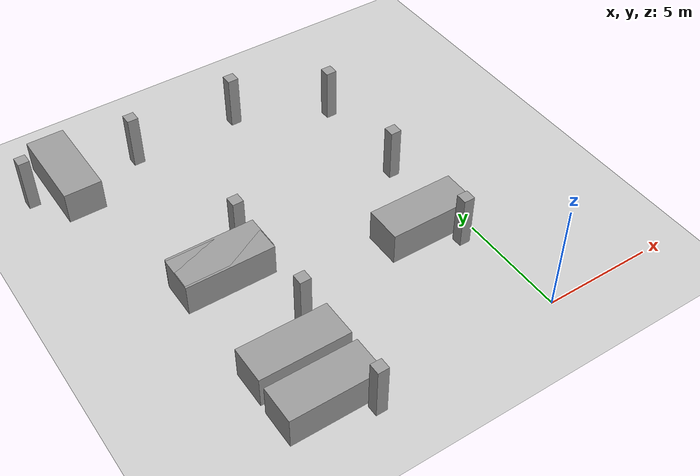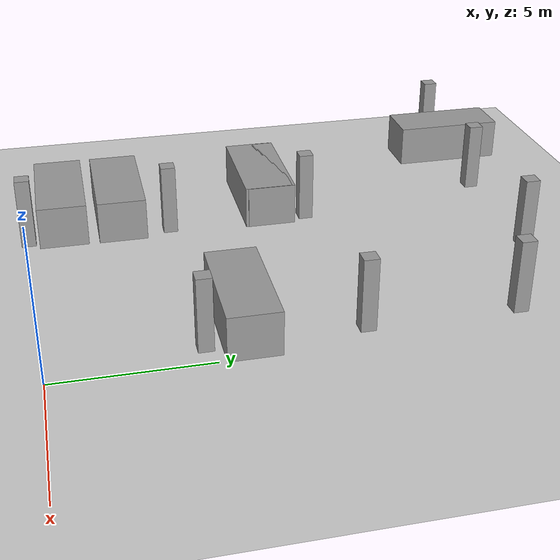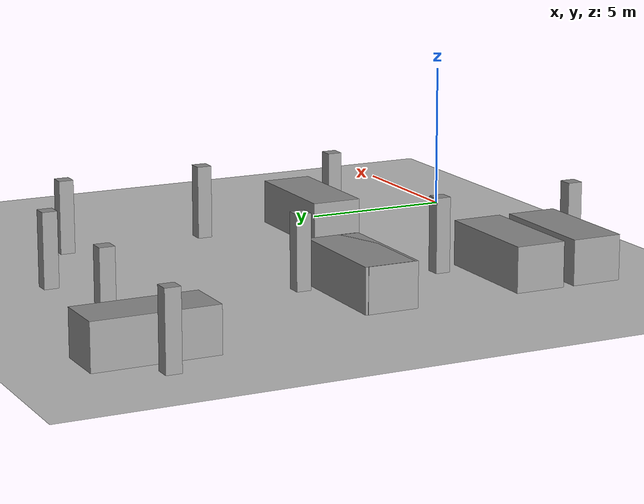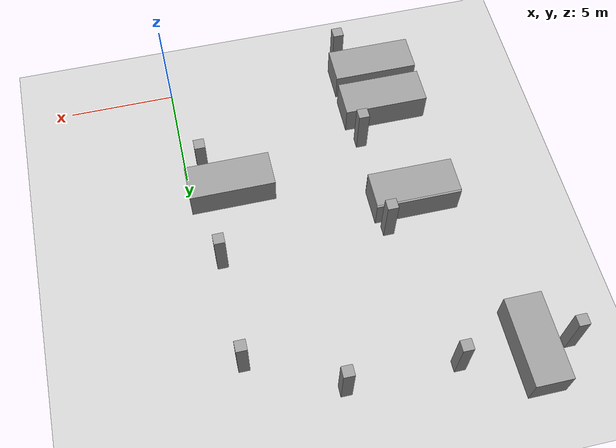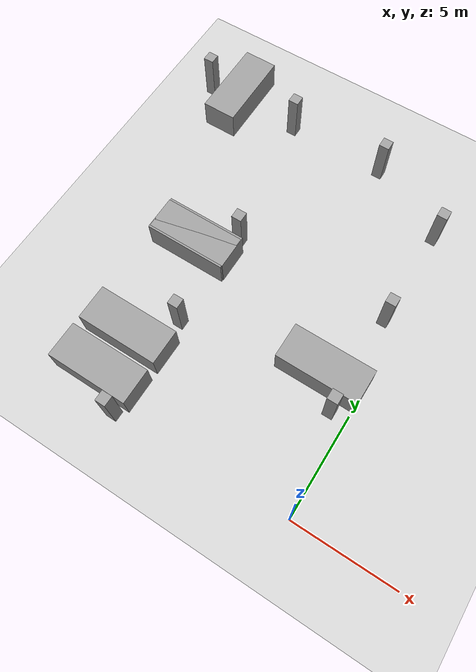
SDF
<sdf version="1.6">
 <world name="default">
  <model name="ground_plane">
   <static>1</static>
   <link name="link">
    <collision name="collision">
     <geometry><plane><normal>0 0 1</normal><size>100 100</size></plane></geometry>
     <surface>
      <contact><collide_bitmask>65535</collide_bitmask></contact>
      <friction><ode><mu>100</mu><mu2>50</mu2></ode></friction>
     </surface>
    </collision>
    <visual name="visual">
     <cast_shadows>0</cast_shadows>
     <geometry><plane><normal>0 0 1</normal><size>100 100</size></plane></geometry>
     <material>
      <script><uri>file://media/materials/scripts/gazebo.material</uri><name>Gazebo/Grey</name></script>
     </material>
    </visual>
   </link>
  </model>
  <model name="carpark_columns">
   <link name="link_0_clone">
    <inertial>
     <mass>10000</mass>
     <inertia><ixx>1666.67</ixx><ixy>0</ixy><ixz>0</ixz><iyy>1666.67</iyy><iyz>0</iyz><izz>1666.67</izz></inertia>
    </inertial>
    <pose>6.61634 -6.04328 0.3 0 -0 0</pose>
    <visual name="visual">
     <geometry><box><size>0.5 0.5 2.5</size></box></geometry>
     <material>
      <lighting>1</lighting>
      <script><uri>file://media/materials/scripts/gazebo.material</uri><name>Gazebo/Grey</name></script>
      <shader type="vertex"><normal_map>__default__</normal_map></shader>
      <ambient>0.3 0.3 0.3 1</ambient>
      <diffuse>0.7 0.7 0.7 1</diffuse>
      <specular>0.01 0.01 0.01 1</specular>
      <emissive>0 0 0 1</emissive>
     </material>
    </visual>
    <collision name="collision">
     <geometry><box><size>0.5 0.5 2.5</size></box></geometry>
     <surface>
      <friction>
       <ode><mu>1</mu><mu2>1</mu2><fdir1>0 0 0</fdir1><slip1>0</slip1><slip2>0</slip2></ode>
       <torsional>
        <coefficient>1</coefficient>
        <patch_radius>0</patch_radius>
        <surface_radius>0</surface_radius>
        <use_patch_radius>1</use_patch_radius>
        <ode><slip>0</slip></ode>
       </torsional>
      </friction>
      <bounce><restitution_coefficient>0</restitution_coefficient><threshold>1e+06</threshold></bounce>
      <contact>
       <collide_without_contact>0</collide_without_contact>
       <collide_without_contact_bitmask>1</collide_without_contact_bitmask>
       <collide_bitmask>0x01</collide_bitmask>
       <ode>
        <soft_cfm>0</soft_cfm>
        <soft_erp>0.2</soft_erp>
        <kp>1e+13</kp>
        <kd>1</kd>
        <max_vel>0.01</max_vel>
        <min_depth>0</min_depth>
       </ode>
       <bullet>
        <split_impulse>1</split_impulse>
        <split_impulse_penetration_threshold>-0.01</split_impulse_penetration_threshold>
        <soft_cfm>0</soft_cfm>
        <soft_erp>0.2</soft_erp>
        <kp>1e+13</kp>
        <kd>1</kd>
       </bullet>
      </contact>
     </surface>
    </collision>
   </link>
   <link name="link_0_clone_clone">
    <inertial>
     <mass>10000</mass>
     <inertia><ixx>1666.67</ixx><ixy>0</ixy><ixz>0</ixz><iyy>1666.67</iyy><iyz>0</iyz><izz>1666.67</izz></inertia>
    </inertial>
    <pose>6.61634 -1.04327 0.3 0 -0 0</pose>
    <visual name="visual">
     <geometry><box><size>0.5 0.5 2.5</size></box></geometry>
     <material>
      <lighting>1</lighting>
      <script><uri>file://media/materials/scripts/gazebo.material</uri><name>Gazebo/Grey</name></script>
      <shader type="vertex"><normal_map>__default__</normal_map></shader>
      <ambient>0.3 0.3 0.3 1</ambient>
      <diffuse>0.7 0.7 0.7 1</diffuse>
      <specular>0.01 0.01 0.01 1</specular>
      <emissive>0 0 0 1</emissive>
     </material>
    </visual>
    <collision name="collision">
     <geometry><box><size>0.5 0.5 2.5</size></box></geometry>
     <surface>
      <friction>
       <ode><mu>1</mu><mu2>1</mu2><fdir1>0 0 0</fdir1><slip1>0</slip1><slip2>0</slip2></ode>
       <torsional>
        <coefficient>1</coefficient>
        <patch_radius>0</patch_radius>
        <surface_radius>0</surface_radius>
        <use_patch_radius>1</use_patch_radius>
        <ode><slip>0</slip></ode>
       </torsional>
      </friction>
      <bounce><restitution_coefficient>0</restitution_coefficient><threshold>1e+06</threshold></bounce>
      <contact>
       <collide_without_contact>0</collide_without_contact>
       <collide_without_contact_bitmask>1</collide_without_contact_bitmask>
       <collide_bitmask>0x01</collide_bitmask>
       <ode>
        <soft_cfm>0</soft_cfm>
        <soft_erp>0.2</soft_erp>
        <kp>1e+13</kp>
        <kd>1</kd>
        <max_vel>0.01</max_vel>
        <min_depth>0</min_depth>
       </ode>
       <bullet>
        <split_impulse>1</split_impulse>
        <split_impulse_penetration_threshold>-0.01</split_impulse_penetration_threshold>
        <soft_cfm>0</soft_cfm>
        <soft_erp>0.2</soft_erp>
        <kp>1e+13</kp>
        <kd>1</kd>
       </bullet>
      </contact>
     </surface>
    </collision>
   </link>
   <link name="link_0_clone_clone_clone">
    <inertial>
     <mass>10000</mass>
     <inertia><ixx>1666.67</ixx><ixy>0</ixy><ixz>0</ixz><iyy>1666.67</iyy><iyz>0</iyz><izz>1666.67</izz></inertia>
    </inertial>
    <pose>6.61634 3.95673 0.3 0 -0 0</pose>
    <visual name="visual">
     <geometry><box><size>0.5 0.5 2.5</size></box></geometry>
     <material>
      <lighting>1</lighting>
      <script><uri>file://media/materials/scripts/gazebo.material</uri><name>Gazebo/Grey</name></script>
      <shader type="vertex"><normal_map>__default__</normal_map></shader>
      <ambient>0.3 0.3 0.3 1</ambient>
      <diffuse>0.7 0.7 0.7 1</diffuse>
      <specular>0.01 0.01 0.01 1</specular>
      <emissive>0 0 0 1</emissive>
     </material>
    </visual>
    <collision name="collision">
     <geometry><box><size>0.5 0.5 2.5</size></box></geometry>
     <surface>
      <friction>
       <ode><mu>1</mu><mu2>1</mu2><fdir1>0 0 0</fdir1><slip1>0</slip1><slip2>0</slip2></ode>
       <torsional>
        <coefficient>1</coefficient>
        <patch_radius>0</patch_radius>
        <surface_radius>0</surface_radius>
        <use_patch_radius>1</use_patch_radius>
        <ode><slip>0</slip></ode>
       </torsional>
      </friction>
      <bounce><restitution_coefficient>0</restitution_coefficient><threshold>1e+06</threshold></bounce>
      <contact>
       <collide_without_contact>0</collide_without_contact>
       <collide_without_contact_bitmask>1</collide_without_contact_bitmask>
       <collide_bitmask>0x01</collide_bitmask>
       <ode>
        <soft_cfm>0</soft_cfm>
        <soft_erp>0.2</soft_erp>
        <kp>1e+13</kp>
        <kd>1</kd>
        <max_vel>0.01</max_vel>
        <min_depth>0</min_depth>
       </ode>
       <bullet>
        <split_impulse>1</split_impulse>
        <split_impulse_penetration_threshold>-0.01</split_impulse_penetration_threshold>
        <soft_cfm>0</soft_cfm>
        <soft_erp>0.2</soft_erp>
        <kp>1e+13</kp>
        <kd>1</kd>
       </bullet>
      </contact>
     </surface>
    </collision>
   </link>
   <link name="link_0_clone_clone_clone_0">
    <inertial>
     <mass>10000</mass>
     <inertia><ixx>1666.67</ixx><ixy>0</ixy><ixz>0</ixz><iyy>1666.67</iyy><iyz>0</iyz><izz>1666.67</izz></inertia>
    </inertial>
    <pose>-1.18366 -11.0433 0.3 0 -0 0</pose>
    <visual name="visual">
     <geometry><box><size>0.5 0.5 2.5</size></box></geometry>
     <material>
      <lighting>1</lighting>
      <script><uri>file://media/materials/scripts/gazebo.material</uri><name>Gazebo/Grey</name></script>
      <shader type="vertex"><normal_map>__default__</normal_map></shader>
      <ambient>0.3 0.3 0.3 1</ambient>
      <diffuse>0.7 0.7 0.7 1</diffuse>
      <specular>0.01 0.01 0.01 1</specular>
      <emissive>0 0 0 1</emissive>
     </material>
    </visual>
    <collision name="collision">
     <geometry><box><size>0.5 0.5 2.5</size></box></geometry>
     <surface>
      <friction>
       <ode><mu>1</mu><mu2>1</mu2><fdir1>0 0 0</fdir1><slip1>0</slip1><slip2>0</slip2></ode>
       <torsional>
        <coefficient>1</coefficient>
        <patch_radius>0</patch_radius>
        <surface_radius>0</surface_radius>
        <use_patch_radius>1</use_patch_radius>
        <ode><slip>0</slip></ode>
       </torsional>
      </friction>
      <bounce><restitution_coefficient>0</restitution_coefficient><threshold>1e+06</threshold></bounce>
      <contact>
       <collide_without_contact>0</collide_without_contact>
       <collide_without_contact_bitmask>1</collide_without_contact_bitmask>
       <collide_bitmask>0x01</collide_bitmask>
       <ode>
        <soft_cfm>0</soft_cfm>
        <soft_erp>0.2</soft_erp>
        <kp>1e+13</kp>
        <kd>1</kd>
        <max_vel>0.01</max_vel>
        <min_depth>0</min_depth>
       </ode>
       <bullet>
        <split_impulse>1</split_impulse>
        <split_impulse_penetration_threshold>-0.01</split_impulse_penetration_threshold>
        <soft_cfm>0</soft_cfm>
        <soft_erp>0.2</soft_erp>
        <kp>1e+13</kp>
        <kd>1</kd>
       </bullet>
      </contact>
     </surface>
    </collision>
   </link>
   <link name="link_0_clone_clone_clone_0_clone">
    <inertial>
     <mass>10000</mass>
     <inertia><ixx>1666.67</ixx><ixy>0</ixy><ixz>0</ixz><iyy>1666.67</iyy><iyz>0</iyz><izz>1666.67</izz></inertia>
    </inertial>
    <pose>-1.18366 -6.04328 0.3 0 -0 0</pose>
    <visual name="visual">
     <geometry><box><size>0.5 0.5 2.5</size></box></geometry>
     <material>
      <lighting>1</lighting>
      <script><uri>file://media/materials/scripts/gazebo.material</uri><name>Gazebo/Grey</name></script>
      <shader type="vertex"><normal_map>__default__</normal_map></shader>
      <ambient>0.3 0.3 0.3 1</ambient>
      <diffuse>0.7 0.7 0.7 1</diffuse>
      <specular>0.01 0.01 0.01 1</specular>
      <emissive>0 0 0 1</emissive>
     </material>
    </visual>
    <collision name="collision">
     <geometry><box><size>0.5 0.5 2.5</size></box></geometry>
     <surface>
      <friction>
       <ode><mu>1</mu><mu2>1</mu2><fdir1>0 0 0</fdir1><slip1>0</slip1><slip2>0</slip2></ode>
       <torsional>
        <coefficient>1</coefficient>
        <patch_radius>0</patch_radius>
        <surface_radius>0</surface_radius>
        <use_patch_radius>1</use_patch_radius>
        <ode><slip>0</slip></ode>
       </torsional>
      </friction>
      <bounce><restitution_coefficient>0</restitution_coefficient><threshold>1e+06</threshold></bounce>
      <contact>
       <collide_without_contact>0</collide_without_contact>
       <collide_without_contact_bitmask>1</collide_without_contact_bitmask>
       <collide_bitmask>0x01</collide_bitmask>
       <ode>
        <soft_cfm>0</soft_cfm>
        <soft_erp>0.2</soft_erp>
        <kp>1e+13</kp>
        <kd>1</kd>
        <max_vel>0.01</max_vel>
        <min_depth>0</min_depth>
       </ode>
       <bullet>
        <split_impulse>1</split_impulse>
        <split_impulse_penetration_threshold>-0.01</split_impulse_penetration_threshold>
        <soft_cfm>0</soft_cfm>
        <soft_erp>0.2</soft_erp>
        <kp>1e+13</kp>
        <kd>1</kd>
       </bullet>
      </contact>
     </surface>
    </collision>
   </link>
   <link name="link_0_clone_clone_clone_0_clone_clone">
    <inertial>
     <mass>10000</mass>
     <inertia><ixx>1666.67</ixx><ixy>0</ixy><ixz>0</ixz><iyy>1666.67</iyy><iyz>0</iyz><izz>1666.67</izz></inertia>
    </inertial>
    <pose>-1.18366 -1.04327 0.3 0 -0 0</pose>
    <visual name="visual">
     <geometry><box><size>0.5 0.5 2.5</size></box></geometry>
     <material>
      <lighting>1</lighting>
      <script><uri>file://media/materials/scripts/gazebo.material</uri><name>Gazebo/Grey</name></script>
      <shader type="vertex"><normal_map>__default__</normal_map></shader>
      <ambient>0.3 0.3 0.3 1</ambient>
      <diffuse>0.7 0.7 0.7 1</diffuse>
      <specular>0.01 0.01 0.01 1</specular>
      <emissive>0 0 0 1</emissive>
     </material>
    </visual>
    <collision name="collision">
     <geometry><box><size>0.5 0.5 2.5</size></box></geometry>
     <surface>
      <friction>
       <ode><mu>1</mu><mu2>1</mu2><fdir1>0 0 0</fdir1><slip1>0</slip1><slip2>0</slip2></ode>
       <torsional>
        <coefficient>1</coefficient>
        <patch_radius>0</patch_radius>
        <surface_radius>0</surface_radius>
        <use_patch_radius>1</use_patch_radius>
        <ode><slip>0</slip></ode>
       </torsional>
      </friction>
      <bounce><restitution_coefficient>0</restitution_coefficient><threshold>1e+06</threshold></bounce>
      <contact>
       <collide_without_contact>0</collide_without_contact>
       <collide_without_contact_bitmask>1</collide_without_contact_bitmask>
       <collide_bitmask>0x01</collide_bitmask>
       <ode>
        <soft_cfm>0</soft_cfm>
        <soft_erp>0.2</soft_erp>
        <kp>1e+13</kp>
        <kd>1</kd>
        <max_vel>0.01</max_vel>
        <min_depth>0</min_depth>
       </ode>
       <bullet>
        <split_impulse>1</split_impulse>
        <split_impulse_penetration_threshold>-0.01</split_impulse_penetration_threshold>
        <soft_cfm>0</soft_cfm>
        <soft_erp>0.2</soft_erp>
        <kp>1e+13</kp>
        <kd>1</kd>
       </bullet>
      </contact>
     </surface>
    </collision>
   </link>
   <link name="link_0_clone_clone_clone_0_clone_clone_clone">
    <inertial>
     <mass>10000</mass>
     <inertia><ixx>1666.67</ixx><ixy>0</ixy><ixz>0</ixz><iyy>1666.67</iyy><iyz>0</iyz><izz>1666.67</izz></inertia>
    </inertial>
    <pose>-7.38366 5.95672 0.3 0 -0 0</pose>
    <visual name="visual">
     <geometry><box><size>0.5 0.5 2.5</size></box></geometry>
     <material>
      <lighting>1</lighting>
      <script><uri>file://media/materials/scripts/gazebo.material</uri><name>Gazebo/Grey</name></script>
      <shader type="vertex"><normal_map>__default__</normal_map></shader>
      <ambient>0.3 0.3 0.3 1</ambient>
      <diffuse>0.7 0.7 0.7 1</diffuse>
      <specular>0.01 0.01 0.01 1</specular>
      <emissive>0 0 0 1</emissive>
     </material>
    </visual>
    <collision name="collision">
     <geometry><box><size>0.5 0.5 2.5</size></box></geometry>
     <surface>
      <friction>
       <ode><mu>1</mu><mu2>1</mu2><fdir1>0 0 0</fdir1><slip1>0</slip1><slip2>0</slip2></ode>
       <torsional>
        <coefficient>1</coefficient>
        <patch_radius>0</patch_radius>
        <surface_radius>0</surface_radius>
        <use_patch_radius>1</use_patch_radius>
        <ode><slip>0</slip></ode>
       </torsional>
      </friction>
      <bounce><restitution_coefficient>0</restitution_coefficient><threshold>1e+06</threshold></bounce>
      <contact>
       <collide_without_contact>0</collide_without_contact>
       <collide_without_contact_bitmask>1</collide_without_contact_bitmask>
       <collide_bitmask>0x01</collide_bitmask>
       <ode>
        <soft_cfm>0</soft_cfm>
        <soft_erp>0.2</soft_erp>
        <kp>1e+13</kp>
        <kd>1</kd>
        <max_vel>0.01</max_vel>
        <min_depth>0</min_depth>
       </ode>
       <bullet>
        <split_impulse>1</split_impulse>
        <split_impulse_penetration_threshold>-0.01</split_impulse_penetration_threshold>
        <soft_cfm>0</soft_cfm>
        <soft_erp>0.2</soft_erp>
        <kp>1e+13</kp>
        <kd>1</kd>
       </bullet>
      </contact>
     </surface>
    </collision>
   </link>
   <link name="link_0_clone_clone_clone_0_clone_clone_clone_clone">
    <inertial>
     <mass>10000</mass>
     <inertia><ixx>1666.67</ixx><ixy>0</ixy><ixz>0</ixz><iyy>1666.67</iyy><iyz>0</iyz><izz>1666.67</izz></inertia>
    </inertial>
    <pose>-2.38366 5.95672 0.3 0 -0 0</pose>
    <visual name="visual">
     <geometry><box><size>0.5 0.5 2.5</size></box></geometry>
     <material>
      <lighting>1</lighting>
      <script><uri>file://media/materials/scripts/gazebo.material</uri><name>Gazebo/Grey</name></script>
      <shader type="vertex"><normal_map>__default__</normal_map></shader>
      <ambient>0.3 0.3 0.3 1</ambient>
      <diffuse>0.7 0.7 0.7 1</diffuse>
      <specular>0.01 0.01 0.01 1</specular>
      <emissive>0 0 0 1</emissive>
     </material>
    </visual>
    <collision name="collision">
     <geometry><box><size>0.5 0.5 2.5</size></box></geometry>
     <surface>
      <friction>
       <ode><mu>1</mu><mu2>1</mu2><fdir1>0 0 0</fdir1><slip1>0</slip1><slip2>0</slip2></ode>
       <torsional>
        <coefficient>1</coefficient>
        <patch_radius>0</patch_radius>
        <surface_radius>0</surface_radius>
        <use_patch_radius>1</use_patch_radius>
        <ode><slip>0</slip></ode>
       </torsional>
      </friction>
      <bounce><restitution_coefficient>0</restitution_coefficient><threshold>1e+06</threshold></bounce>
      <contact>
       <collide_without_contact>0</collide_without_contact>
       <collide_without_contact_bitmask>1</collide_without_contact_bitmask>
       <collide_bitmask>0x01</collide_bitmask>
       <ode>
        <soft_cfm>0</soft_cfm>
        <soft_erp>0.2</soft_erp>
        <kp>1e+13</kp>
        <kd>1</kd>
        <max_vel>0.01</max_vel>
        <min_depth>0</min_depth>
       </ode>
       <bullet>
        <split_impulse>1</split_impulse>
        <split_impulse_penetration_threshold>-0.01</split_impulse_penetration_threshold>
        <soft_cfm>0</soft_cfm>
        <soft_erp>0.2</soft_erp>
        <kp>1e+13</kp>
        <kd>1</kd>
       </bullet>
      </contact>
     </surface>
    </collision>
   </link>
   <link name="link_0_clone_clone_clone_0_clone_clone_clone_clone_clone">
    <inertial>
     <mass>10000</mass>
     <inertia><ixx>1666.67</ixx><ixy>0</ixy><ixz>0</ixz><iyy>1666.67</iyy><iyz>0</iyz><izz>1666.67</izz></inertia>
    </inertial>
    <pose>2.61634 5.95672 0.3 0 -0 0</pose>
    <visual name="visual">
     <geometry><box><size>0.5 0.5 2.5</size></box></geometry>
     <material>
      <lighting>1</lighting>
      <script><uri>file://media/materials/scripts/gazebo.material</uri><name>Gazebo/Grey</name></script>
      <shader type="vertex"><normal_map>__default__</normal_map></shader>
      <ambient>0.3 0.3 0.3 1</ambient>
      <diffuse>0.7 0.7 0.7 1</diffuse>
      <specular>0.01 0.01 0.01 1</specular>
      <emissive>0 0 0 1</emissive>
     </material>
    </visual>
    <collision name="collision">
     <geometry><box><size>0.5 0.5 2.5</size></box></geometry>
     <surface>
      <friction>
       <ode><mu>1</mu><mu2>1</mu2><fdir1>0 0 0</fdir1><slip1>0</slip1><slip2>0</slip2></ode>
       <torsional>
        <coefficient>1</coefficient>
        <patch_radius>0</patch_radius>
        <surface_radius>0</surface_radius>
        <use_patch_radius>1</use_patch_radius>
        <ode><slip>0</slip></ode>
       </torsional>
      </friction>
      <bounce><restitution_coefficient>0</restitution_coefficient><threshold>1e+06</threshold></bounce>
      <contact>
       <collide_without_contact>0</collide_without_contact>
       <collide_without_contact_bitmask>1</collide_without_contact_bitmask>
       <collide_bitmask>0x01</collide_bitmask>
       <ode>
        <soft_cfm>0</soft_cfm>
        <soft_erp>0.2</soft_erp>
        <kp>1e+13</kp>
        <kd>1</kd>
        <max_vel>0.01</max_vel>
        <min_depth>0</min_depth>
       </ode>
       <bullet>
        <split_impulse>1</split_impulse>
        <split_impulse_penetration_threshold>-0.01</split_impulse_penetration_threshold>
        <soft_cfm>0</soft_cfm>
        <soft_erp>0.2</soft_erp>
        <kp>1e+13</kp>
        <kd>1</kd>
       </bullet>
      </contact>
     </surface>
    </collision>
   </link>
   <static>0</static>
   <pose>-7.45131 10.7687 0.95 0 0 -7.6e-05</pose>
  </model>
  <model name="car_models">
   <link name="link_0">
    <inertial>
     <mass>1000</mass>
     <inertia><ixx>166.667</ixx><ixy>0</ixy><ixz>0</ixz><iyy>166.667</iyy><iyz>0</iyz><izz>166.667</izz></inertia>
    </inertial>
    <pose>-0.844807 -6.30394 -0 0 -0 0</pose>
    <visual name="visual">
     <geometry><box><size>4 1.7 1.5</size></box></geometry>
     <material>
      <lighting>1</lighting>
      <script><uri>file://media/materials/scripts/gazebo.material</uri><name>Gazebo/Grey</name></script>
      <shader type="vertex"><normal_map>__default__</normal_map></shader>
      <ambient>0.3 0.3 0.3 1</ambient>
      <diffuse>0.7 0.7 0.7 1</diffuse>
      <specular>0.01 0.01 0.01 1</specular>
      <emissive>0 0 0 1</emissive>
     </material>
    </visual>
    <collision name="collision">
     <geometry><box><size>4 1.7 1.5</size></box></geometry>
     <surface>
      <friction>
       <ode><mu>1</mu><mu2>1</mu2><fdir1>0 0 0</fdir1><slip1>0</slip1><slip2>0</slip2></ode>
       <torsional>
        <coefficient>1</coefficient>
        <patch_radius>0</patch_radius>
        <surface_radius>0</surface_radius>
        <use_patch_radius>1</use_patch_radius>
        <ode><slip>0</slip></ode>
       </torsional>
      </friction>
      <bounce><restitution_coefficient>0</restitution_coefficient><threshold>1e+06</threshold></bounce>
      <contact>
       <collide_without_contact>0</collide_without_contact>
       <collide_without_contact_bitmask>1</collide_without_contact_bitmask>
       <collide_bitmask>0x01</collide_bitmask>
       <ode>
        <soft_cfm>0</soft_cfm>
        <soft_erp>0.2</soft_erp>
        <kp>1e+13</kp>
        <kd>1</kd>
        <max_vel>0.01</max_vel>
        <min_depth>0</min_depth>
       </ode>
       <bullet>
        <split_impulse>1</split_impulse>
        <split_impulse_penetration_threshold>-0.01</split_impulse_penetration_threshold>
        <soft_cfm>0</soft_cfm>
        <soft_erp>0.2</soft_erp>
        <kp>1e+13</kp>
        <kd>1</kd>
       </bullet>
      </contact>
     </surface>
    </collision>
   </link>
   <link name="link_0_clone">
    <inertial>
     <mass>1000</mass>
     <inertia><ixx>166.667</ixx><ixy>0</ixy><ixz>0</ixz><iyy>166.667</iyy><iyz>0</iyz><izz>166.667</izz></inertia>
    </inertial>
    <pose>-0.825572 -4.2362 -0 0 -0 0</pose>
    <visual name="visual">
     <geometry><box><size>4 1.7 1.5</size></box></geometry>
     <material>
      <lighting>1</lighting>
      <script><uri>file://media/materials/scripts/gazebo.material</uri><name>Gazebo/Grey</name></script>
      <shader type="vertex"><normal_map>__default__</normal_map></shader>
      <ambient>0.3 0.3 0.3 1</ambient>
      <diffuse>0.7 0.7 0.7 1</diffuse>
      <specular>0.01 0.01 0.01 1</specular>
      <emissive>0 0 0 1</emissive>
     </material>
    </visual>
    <collision name="collision">
     <geometry><box><size>4 1.7 1.5</size></box></geometry>
     <surface>
      <friction>
       <ode><mu>1</mu><mu2>1</mu2><fdir1>0 0 0</fdir1><slip1>0</slip1><slip2>0</slip2></ode>
       <torsional>
        <coefficient>1</coefficient>
        <patch_radius>0</patch_radius>
        <surface_radius>0</surface_radius>
        <use_patch_radius>1</use_patch_radius>
        <ode><slip>0</slip></ode>
       </torsional>
      </friction>
      <bounce><restitution_coefficient>0</restitution_coefficient><threshold>1e+06</threshold></bounce>
      <contact>
       <collide_without_contact>0</collide_without_contact>
       <collide_without_contact_bitmask>1</collide_without_contact_bitmask>
       <collide_bitmask>0x01</collide_bitmask>
       <ode>
        <soft_cfm>0</soft_cfm>
        <soft_erp>0.2</soft_erp>
        <kp>1e+13</kp>
        <kd>1</kd>
        <max_vel>0.01</max_vel>
        <min_depth>0</min_depth>
       </ode>
       <bullet>
        <split_impulse>1</split_impulse>
        <split_impulse_penetration_threshold>-0.01</split_impulse_penetration_threshold>
        <soft_cfm>0</soft_cfm>
        <soft_erp>0.2</soft_erp>
        <kp>1e+13</kp>
        <kd>1</kd>
       </bullet>
      </contact>
     </surface>
    </collision>
   </link>
   <link name="link_0_clone_0">
    <inertial>
     <mass>1000</mass>
     <inertia><ixx>166.667</ixx><ixy>0</ixy><ixz>0</ixz><iyy>166.667</iyy><iyz>0</iyz><izz>166.667</izz></inertia>
    </inertial>
    <pose>-0.892463 1.15023 -0 0 -0 0</pose>
    <visual name="visual">
     <geometry><box><size>4 1.7 1.5</size></box></geometry>
     <material>
      <lighting>1</lighting>
      <script><uri>file://media/materials/scripts/gazebo.material</uri><name>Gazebo/Grey</name></script>
      <shader type="vertex"><normal_map>__default__</normal_map></shader>
      <ambient>0.3 0.3 0.3 1</ambient>
      <diffuse>0.7 0.7 0.7 1</diffuse>
      <specular>0.01 0.01 0.01 1</specular>
      <emissive>0 0 0 1</emissive>
     </material>
    </visual>
    <collision name="collision">
     <geometry><box><size>4 1.7 1.5</size></box></geometry>
     <surface>
      <friction>
       <ode><mu>1</mu><mu2>1</mu2><fdir1>0 0 0</fdir1><slip1>0</slip1><slip2>0</slip2></ode>
       <torsional>
        <coefficient>1</coefficient>
        <patch_radius>0</patch_radius>
        <surface_radius>0</surface_radius>
        <use_patch_radius>1</use_patch_radius>
        <ode><slip>0</slip></ode>
       </torsional>
      </friction>
      <bounce><restitution_coefficient>0</restitution_coefficient><threshold>1e+06</threshold></bounce>
      <contact>
       <collide_without_contact>0</collide_without_contact>
       <collide_without_contact_bitmask>1</collide_without_contact_bitmask>
       <collide_bitmask>0x01</collide_bitmask>
       <ode>
        <soft_cfm>0</soft_cfm>
        <soft_erp>0.2</soft_erp>
        <kp>1e+13</kp>
        <kd>1</kd>
        <max_vel>0.01</max_vel>
        <min_depth>0</min_depth>
       </ode>
       <bullet>
        <split_impulse>1</split_impulse>
        <split_impulse_penetration_threshold>-0.01</split_impulse_penetration_threshold>
        <soft_cfm>0</soft_cfm>
        <soft_erp>0.2</soft_erp>
        <kp>1e+13</kp>
        <kd>1</kd>
       </bullet>
      </contact>
     </surface>
    </collision>
   </link>
   <link name="link_0_clone_1">
    <inertial>
     <mass>1000</mass>
     <inertia><ixx>166.667</ixx><ixy>0</ixy><ixz>0</ixz><iyy>166.667</iyy><iyz>0</iyz><izz>166.667</izz></inertia>
    </inertial>
    <pose>-0.918409 1.05104 -0 0 -0 0</pose>
    <visual name="visual">
     <geometry><box><size>4 1.7 1.5</size></box></geometry>
     <material>
      <lighting>1</lighting>
      <script><uri>file://media/materials/scripts/gazebo.material</uri><name>Gazebo/Grey</name></script>
      <shader type="vertex"><normal_map>__default__</normal_map></shader>
      <ambient>0.3 0.3 0.3 1</ambient>
      <diffuse>0.7 0.7 0.7 1</diffuse>
      <specular>0.01 0.01 0.01 1</specular>
      <emissive>0 0 0 1</emissive>
     </material>
    </visual>
    <collision name="collision">
     <geometry><box><size>4 1.7 1.5</size></box></geometry>
     <surface>
      <friction>
       <ode><mu>1</mu><mu2>1</mu2><fdir1>0 0 0</fdir1><slip1>0</slip1><slip2>0</slip2></ode>
       <torsional>
        <coefficient>1</coefficient>
        <patch_radius>0</patch_radius>
        <surface_radius>0</surface_radius>
        <use_patch_radius>1</use_patch_radius>
        <ode><slip>0</slip></ode>
       </torsional>
      </friction>
      <bounce><restitution_coefficient>0</restitution_coefficient><threshold>1e+06</threshold></bounce>
      <contact>
       <collide_without_contact>0</collide_without_contact>
       <collide_without_contact_bitmask>1</collide_without_contact_bitmask>
       <collide_bitmask>0x01</collide_bitmask>
       <ode>
        <soft_cfm>0</soft_cfm>
        <soft_erp>0.2</soft_erp>
        <kp>1e+13</kp>
        <kd>1</kd>
        <max_vel>0.01</max_vel>
        <min_depth>0</min_depth>
       </ode>
       <bullet>
        <split_impulse>1</split_impulse>
        <split_impulse_penetration_threshold>-0.01</split_impulse_penetration_threshold>
        <soft_cfm>0</soft_cfm>
        <soft_erp>0.2</soft_erp>
        <kp>1e+13</kp>
        <kd>1</kd>
       </bullet>
      </contact>
     </surface>
    </collision>
   </link>
   <link name="link_0_clone_2">
    <inertial>
     <mass>1000</mass>
     <inertia><ixx>166.667</ixx><ixy>0</ixy><ixz>0</ixz><iyy>166.667</iyy><iyz>0</iyz><izz>166.667</izz></inertia>
    </inertial>
    <pose>7.34565 -1.16615 -0 0 -0 0</pose>
    <visual name="visual">
     <geometry><box><size>4 1.7 1.5</size></box></geometry>
     <material>
      <lighting>1</lighting>
      <script><uri>file://media/materials/scripts/gazebo.material</uri><name>Gazebo/Grey</name></script>
      <shader type="vertex"><normal_map>__default__</normal_map></shader>
      <ambient>0.3 0.3 0.3 1</ambient>
      <diffuse>0.7 0.7 0.7 1</diffuse>
      <specular>0.01 0.01 0.01 1</specular>
      <emissive>0 0 0 1</emissive>
     </material>
    </visual>
    <collision name="collision">
     <geometry><box><size>4 1.7 1.5</size></box></geometry>
     <surface>
      <friction>
       <ode><mu>1</mu><mu2>1</mu2><fdir1>0 0 0</fdir1><slip1>0</slip1><slip2>0</slip2></ode>
       <torsional>
        <coefficient>1</coefficient>
        <patch_radius>0</patch_radius>
        <surface_radius>0</surface_radius>
        <use_patch_radius>1</use_patch_radius>
        <ode><slip>0</slip></ode>
       </torsional>
      </friction>
      <bounce><restitution_coefficient>0</restitution_coefficient><threshold>1e+06</threshold></bounce>
      <contact>
       <collide_without_contact>0</collide_without_contact>
       <collide_without_contact_bitmask>1</collide_without_contact_bitmask>
       <collide_bitmask>0x01</collide_bitmask>
       <ode>
        <soft_cfm>0</soft_cfm>
        <soft_erp>0.2</soft_erp>
        <kp>1e+13</kp>
        <kd>1</kd>
        <max_vel>0.01</max_vel>
        <min_depth>0</min_depth>
       </ode>
       <bullet>
        <split_impulse>1</split_impulse>
        <split_impulse_penetration_threshold>-0.01</split_impulse_penetration_threshold>
        <soft_cfm>0</soft_cfm>
        <soft_erp>0.2</soft_erp>
        <kp>1e+13</kp>
        <kd>1</kd>
       </bullet>
      </contact>
     </surface>
    </collision>
   </link>
   <link name="link_0_clone_3">
    <inertial>
     <mass>1000</mass>
     <inertia><ixx>166.667</ixx><ixy>0</ixy><ixz>0</ixz><iyy>166.667</iyy><iyz>0</iyz><izz>166.667</izz></inertia>
    </inertial>
    <pose>-3.86435 9.50505 -0 0 0 -1.56747</pose>
    <visual name="visual">
     <geometry><box><size>4 1.7 1.5</size></box></geometry>
     <material>
      <lighting>1</lighting>
      <script><uri>file://media/materials/scripts/gazebo.material</uri><name>Gazebo/Grey</name></script>
      <shader type="vertex"><normal_map>__default__</normal_map></shader>
      <ambient>0.3 0.3 0.3 1</ambient>
      <diffuse>0.7 0.7 0.7 1</diffuse>
      <specular>0.01 0.01 0.01 1</specular>
      <emissive>0 0 0 1</emissive>
     </material>
    </visual>
    <collision name="collision">
     <geometry><box><size>4 1.7 1.5</size></box></geometry>
     <surface>
      <friction>
       <ode><mu>1</mu><mu2>1</mu2><fdir1>0 0 0</fdir1><slip1>0</slip1><slip2>0</slip2></ode>
       <torsional>
        <coefficient>1</coefficient>
        <patch_radius>0</patch_radius>
        <surface_radius>0</surface_radius>
        <use_patch_radius>1</use_patch_radius>
        <ode><slip>0</slip></ode>
       </torsional>
      </friction>
      <bounce><restitution_coefficient>0</restitution_coefficient><threshold>1e+06</threshold></bounce>
      <contact>
       <collide_without_contact>0</collide_without_contact>
       <collide_without_contact_bitmask>1</collide_without_contact_bitmask>
       <collide_bitmask>0x01</collide_bitmask>
       <ode>
        <soft_cfm>0</soft_cfm>
        <soft_erp>0.2</soft_erp>
        <kp>1e+13</kp>
        <kd>1</kd>
        <max_vel>0.01</max_vel>
        <min_depth>0</min_depth>
       </ode>
       <bullet>
        <split_impulse>1</split_impulse>
        <split_impulse_penetration_threshold>-0.01</split_impulse_penetration_threshold>
        <soft_cfm>0</soft_cfm>
        <soft_erp>0.2</soft_erp>
        <kp>1e+13</kp>
        <kd>1</kd>
       </bullet>
      </contact>
     </surface>
    </collision>
   </link>
   <static>0</static>
   <pose>-9.28158 7.25616 0.750009 1e-06 -0 -0.001641</pose>
  </model>
 </world>
</sdf>
